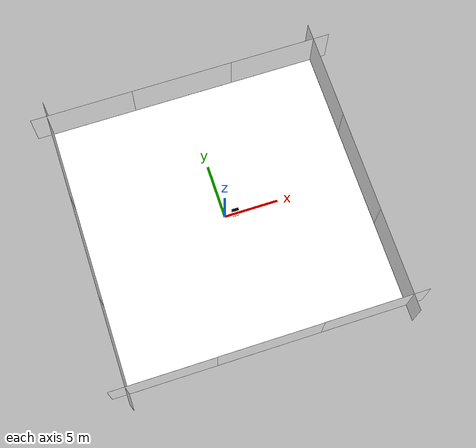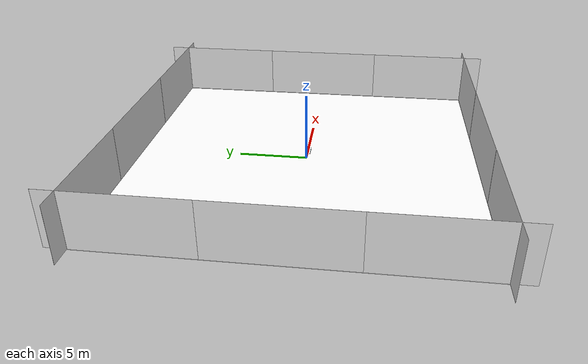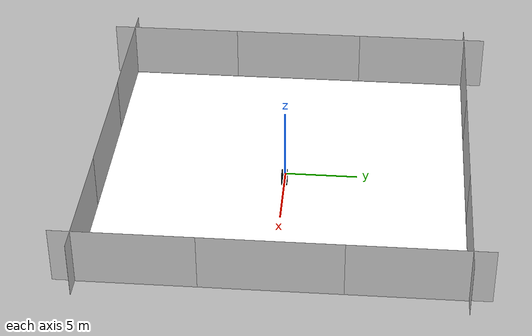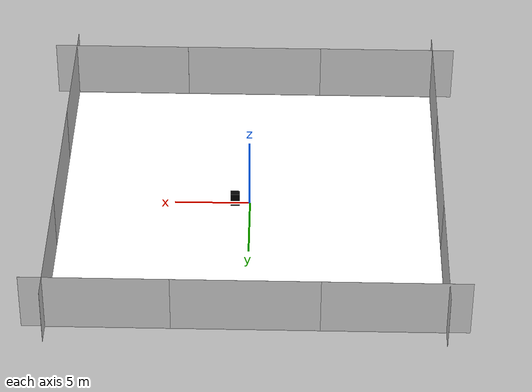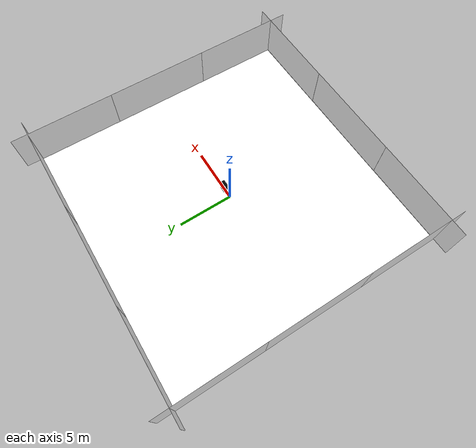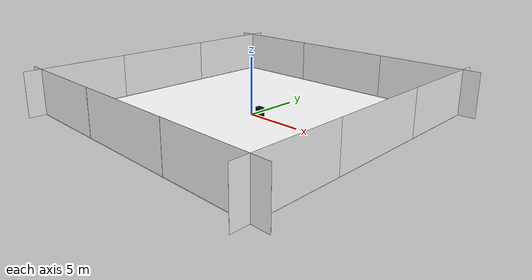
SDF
<sdf version="1.6">
 <world name="demo">
  <physics name="1ms" type="ignored">
   <max_step_size>0.001</max_step_size>
   <real_time_factor>1.0</real_time_factor>
  </physics>
  <plugin filename="gz-sim-physics-system" name="gz::sim::systems::Physics"/>
  <plugin filename="gz-sim-sensors-system" name="gz::sim::systems::Sensors">
   <render_engine>ogre2</render_engine>
  </plugin>
  <plugin filename="gz-sim-scene-broadcaster-system" name="gz::sim::systems::SceneBroadcaster"/>
  <plugin filename="gz-sim-user-commands-system" name="gz::sim::systems::UserCommands"/>
  <light type="directional" name="sun">
   <pose>0 0 100 0 0 0</pose>
   <diffuse>0.8 0.8 0.8 1</diffuse>
   <specular>0.2 0.2 0.2 1</specular>
   <direction>-0.5 0.1 -0.9</direction>
   <intensity>5</intensity>
  </light>
  <atmosphere type="adiabatic">
   <temperature>280</temperature>
   <temperature_gradient>0.0</temperature_gradient>
  </atmosphere>
  <include><uri>model://forest_plane</uri><name>forest_plane</name></include>
  <include>
   <uri>model://forest_wall</uri>
   <name>forest_wall1</name>
   <pose>12.5 0 2 1.570796 0 -1.570796</pose>
  </include>
  <include>
   <uri>model://forest_wall</uri>
   <name>forest_wall2</name>
   <pose>12.5 -9.32 2 1.570796 0 -1.570796</pose>
  </include>
  <include>
   <uri>model://forest_wall</uri>
   <name>forest_wall3</name>
   <pose>12.5  9.32 2 1.570796 0 -1.570796</pose>
  </include>
  <include>
   <uri>model://forest_wall</uri>
   <name>forest_wall4</name>
   <pose>-12.5 0 2 1.570796 0  1.570796</pose>
  </include>
  <include>
   <uri>model://forest_wall</uri>
   <name>forest_wall5</name>
   <pose>-12.5 -9.32 2 1.570796 0  1.570796</pose>
  </include>
  <include>
   <uri>model://forest_wall</uri>
   <name>forest_wall6</name>
   <pose>-12.5  9.32 2 1.570796 0  1.570796</pose>
  </include>
  <include>
   <uri>model://forest_wall</uri>
   <name>forest_wall7</name>
   <pose>0 -12.5 2 1.570796 0 3.14</pose>
  </include>
  <include>
   <uri>model://forest_wall</uri>
   <name>forest_wall8</name>
   <pose>-9.32 -12.5 2 1.570796 0 3.14</pose>
  </include>
  <include>
   <uri>model://forest_wall</uri>
   <name>forest_wall9</name>
   <pose>9.32 -12.5 2 1.570796 0 3.14</pose>
  </include>
  <include><uri>model://forest_wall</uri><name>forest_wall10</name><pose>0 12.5 2 1.570796 0 0</pose></include>
  <include>
   <uri>model://forest_wall</uri>
   <name>forest_wall11</name>
   <pose>-9.32 12.5 2 1.570796 0 0</pose>
  </include>
  <include>
   <uri>model://forest_wall</uri>
   <name>forest_wall12</name>
   <pose>9.32 12.5 2 1.570796 0 0</pose>
  </include>
  <model name="randy_thermal_overlay">
   <pose>1 0 0 0 0 0</pose>
   <static>true</static>
   <link name="link">
    <visual name="overlay">
     <geometry><box><size>0.6 0.4 1.8</size></box></geometry>
     <material><ambient>0 0 0 0</ambient><diffuse>0 0 0 0</diffuse></material>
     <plugin filename="gz-sim-thermal-system" name="gz::sim::systems::Thermal">
      <temperature>330</temperature>
     </plugin>
    </visual>
   </link>
  </model>
 </world>
</sdf>

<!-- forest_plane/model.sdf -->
<sdf version="1.7">
<model name="grass_plane">
    <static>true</static>
    <link name="link">
        <collision name="collision">
            <geometry>
            <box>
                <normal>0 0 1</normal>
                <size>25 25 0.01</size>
            </box>
            </geometry>
        </collision>
        <visual name="visual">
            <cast_shadows>false</cast_shadows>
            <geometry>
            <plane>
                <normal>0 0 1</normal>
                <size>25 25</size>
            </plane>
            </geometry>
            <material>
                <ambient>1.0 1.0 1.0 1</ambient>
                <diffuse>1.0 1.0 1.0 1</diffuse>
                <specular>1.0 1.0 1.0 1</specular>
                <pbr>
                    <metal>
                    <albedo_map>
                        model://forest_plane/materials/textures/forest_overhead.png
                    </albedo_map>
                    </metal>
                </pbr>
            </material>
        </visual>
    </link>
</model>
</sdf>

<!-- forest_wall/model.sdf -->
<sdf version="1.7">
<model name="forest_wall">
    <static>true</static>
    <link name="link">
        <collision name="collision">
            <geometry>
            <plane>
                <normal>0 0 1</normal>
                <size>9.32 4</size>
            </plane>
            </geometry>
        </collision>
        <visual name="visual">
            <cast_shadows>false</cast_shadows>
            <geometry>
            <plane>
                <normal>0 0 1</normal>
                <size>9.32 4</size>
            </plane>
            </geometry>
            <material>
                <ambient>1.0 1.0 1.0 1</ambient>
                <diffuse>1.0 1.0 1.0 1</diffuse>
                <specular>1.0 1.0 1.0 1</specular>
                <pbr>
                    <metal>
                    <albedo_map>
                        model://forest_wall/materials/textures/forest_wall_transparent.png
                    </albedo_map>
                    </metal>
                </pbr>
            </material>
        </visual>
    </link>
</model>
</sdf>
